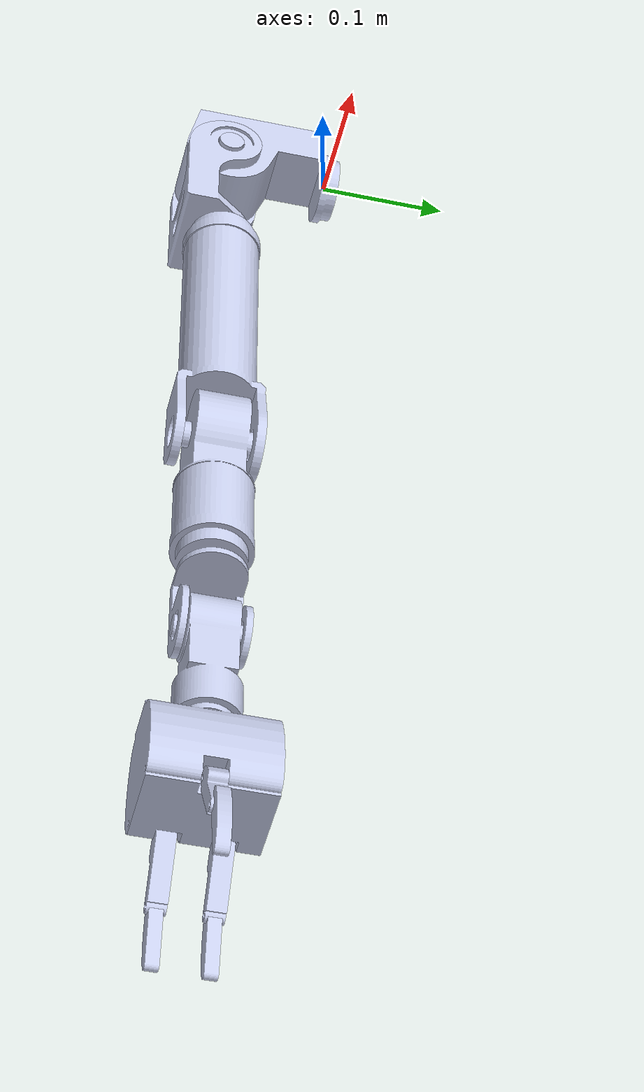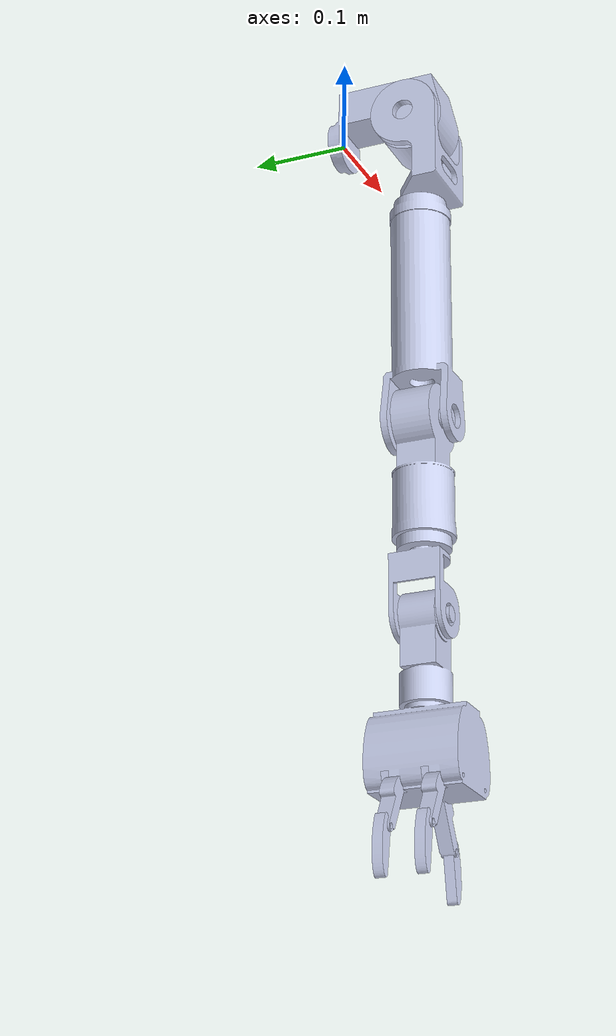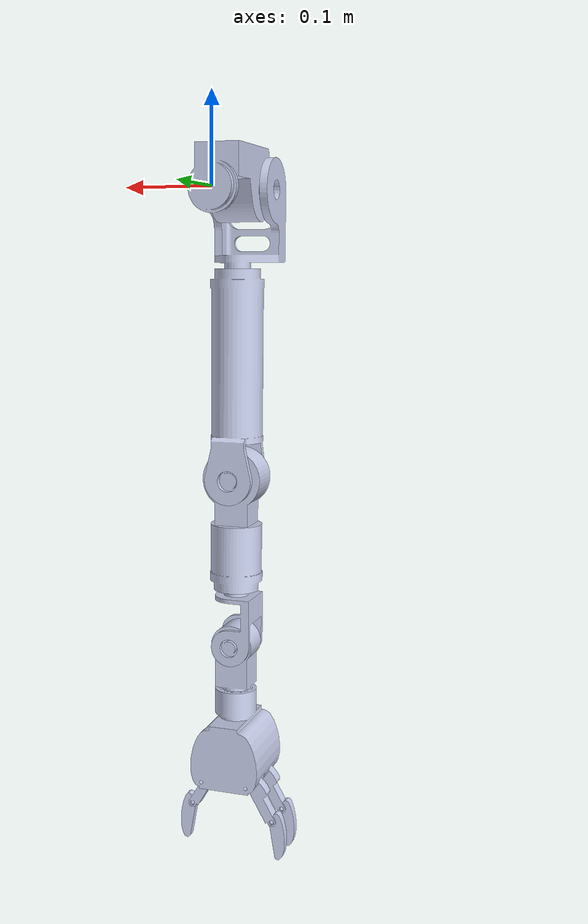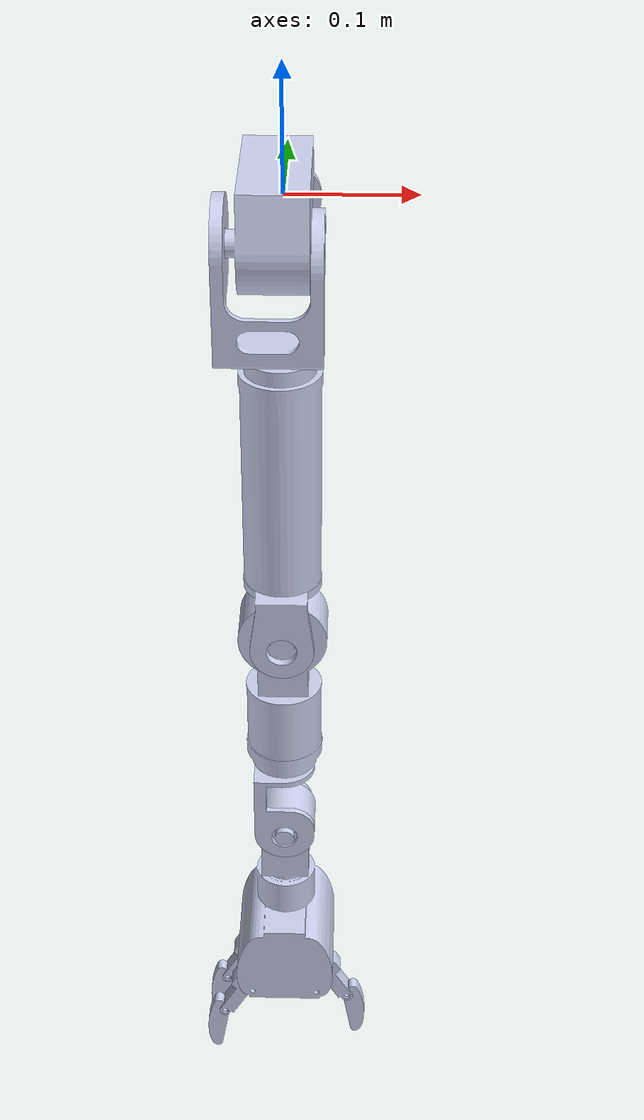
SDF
<?xml version='1.0'?>
<sdf version='1.6'>
  <model name='TEO_rightArm'>

    <link name='FrontalRightShoulder_link'>
      <pose>0 0 0 0 -0 0</pose>
      <inertial>
        <pose>-0.002267 -0.056164 0.008456 0 -0 0</pose>
        <mass>2</mass>
        <inertia>
          <ixx>0.004226791</ixx>
          <ixy>0.0000844</ixy>
          <ixz>-0.0000117</ixz>
          <iyy>0.002127281</iyy>
          <iyz>-0.000280493</iyz>
          <izz>0.004093161</izz>
        </inertia>
      </inertial>
      <visual name='FrontalRightShoulder_visual'>
        <geometry>
          <mesh>
            <uri>model://teo/meshes/visual/FrontalRightShoulder.dae</uri>
          </mesh>
        </geometry>
        <material>
          <ambient>0.792157 0.819608 0.933333 1</ambient>
          <diffuse>0.792157 0.819608 0.933333 1</diffuse>
          <specular>0.633726 0.655686 0.746667 1</specular>
          <emissive>0 0 0 1</emissive>
        </material>
      </visual>
      <collision name='FrontalRightShoulder_collision'>
        <geometry>
          <mesh>
            <uri>model://teo/meshes/collision/FrontalRightShoulder.stl</uri>
          </mesh>
        </geometry>
      </collision>
    </link>

    <joint name='FrontalRightShoulder' type='revolute'>
      <parent>TEO_trunk::FrontalWaist_link</parent>
      <child>TEO_rightArm::FrontalRightShoulder_link</child>
      <axis>
        <xyz>0 1 0</xyz>
        <limit>
          <lower>-1.71</lower>
          <upper>1.85</upper>
        </limit>
        <dynamics>
          <damping>0.001</damping>
          <friction>0.7</friction>
        </dynamics>
      </axis>
    </joint>

    <link name='SagittalRightShoulder_link'>
      <pose>0 -0.084 0 0 -0 0</pose>
      <inertial>
        <pose>-0.008472 -0.004826 -0.027321 0 -0 0</pose>
        <mass>1</mass>
        <inertia>
          <ixx>0.001610932</ixx>
          <ixy>-0.000069</ixy>
          <ixz>-0.000214886</ixz>
          <iyy>0.002187776</iyy>
          <iyz>-0.000069</iyz>
          <izz>0.001173533</izz>
        </inertia>
      </inertial>
      <visual name='SagittalRightShoulder_visual'>
        <geometry>
          <mesh>
            <uri>model://teo/meshes/visual/SagittalRightShoulder.dae</uri>
          </mesh>
        </geometry>
        <material>
          <ambient>0.792157 0.819608 0.933333 1</ambient>
          <diffuse>0.792157 0.819608 0.933333 1</diffuse>
          <specular>0.633726 0.655686 0.746667 1</specular>
          <emissive>0 0 0 1</emissive>
        </material>
      </visual>
      <collision name='SagittalRightShoulder_collision'>
        <geometry>
          <mesh>
            <uri>model://teo/meshes/collision/SagittalRightShoulder.stl</uri>
          </mesh>
        </geometry>
      </collision>
    </link>

    <joint name='SagittalRightShoulder' type='revolute'>
      <parent>TEO_rightArm::FrontalRightShoulder_link</parent>
      <child>TEO_rightArm::SagittalRightShoulder_link</child>
      <axis>
        <xyz>1 0 0</xyz>
        <limit>
          <lower>-1.32</lower>
          <upper>0.39</upper>
        </limit>
        <dynamics>
          <damping>0.001</damping>
          <friction>0.7</friction>
        </dynamics>
      </axis>
    </joint>

    <link name='AxialRightShoulder_link'>
      <pose>0 -0.084 -0.329 0 -0 0</pose>
      <inertial>
        <pose>0.000347 0.000245 0.107382 0 -0 0</pose>
        <mass>1</mass>
      </inertial>
      <visual name='AxialRightShoulder_visual'>
        <geometry>
          <mesh>
            <uri>model://teo/meshes/visual/AxialRightShoulder.dae</uri>
          </mesh>
        </geometry>
        <material>
          <ambient>0.792157 0.819608 0.933333 1</ambient>
          <diffuse>0.792157 0.819608 0.933333 1</diffuse>
          <specular>0.633726 0.655686 0.746667 1</specular>
          <emissive>0 0 0 1</emissive>
        </material>
      </visual>
      <collision name='AxialRightShoulder_collision'>
        <geometry>
          <mesh>
            <uri>model://teo/meshes/collision/AxialRightShoulder.stl</uri>
          </mesh>
        </geometry>
      </collision>
    </link>

    <joint name='AxialRightShoulder' type='revolute'>
      <parent>TEO_rightArm::SagittalRightShoulder_link</parent>
      <child>TEO_rightArm::AxialRightShoulder_link</child>
      <axis>
        <xyz>0 0 1</xyz>
        <limit>
          <lower>-1.4</lower>
          <upper>0.99</upper>
        </limit>
        <dynamics>
          <damping>0.001</damping>
          <friction>0.7</friction>
        </dynamics>
      </axis>
    </joint>

    <link name='FrontalRightElbow_link'>
      <pose>0 -0.084 -0.329 0 -0 0</pose>
      <inertial>
        <pose>0.000237 -0.00004 -0.04998 0 -0 0</pose>
        <mass>1</mass>
        <inertia>
          <ixx>0.002590029</ixx>
          <ixy>0</ixy>
          <ixz>0</ixz>
          <iyy>0.00262307</iyy>
          <iyz>0</iyz>
          <izz>0.000446024</izz>
        </inertia>
      </inertial>
      <visual name='FrontalRightElbow_visual'>
        <geometry>
          <mesh>
            <uri>model://teo/meshes/visual/FrontalRightElbow.dae</uri>
          </mesh>
        </geometry>
        <material>
          <ambient>0.792157 0.819608 0.933333 1</ambient>
          <diffuse>0.792157 0.819608 0.933333 1</diffuse>
          <specular>0.633726 0.655686 0.746667 1</specular>
          <emissive>0 0 0 1</emissive>
        </material>
      </visual>
      <collision name='FrontalRightElbow_collision'>
        <geometry>
          <mesh>
            <uri>model://teo/meshes/collision/FrontalRightElbow.stl</uri>
          </mesh>
        </geometry>
      </collision>
    </link>

    <joint name='FrontalRightElbow' type='revolute'>
      <parent>TEO_rightArm::AxialRightShoulder_link</parent>
      <child>TEO_rightArm::FrontalRightElbow_link</child>
      <axis>
        <xyz>0 1 0</xyz>
        <limit>
          <lower>-1.74</lower>
          <upper>1.72</upper>
        </limit>
        <dynamics>
          <damping>0.001</damping>
          <friction>0.7</friction>
        </dynamics>
      </axis>
    </joint>

    <link name='AxialRightWrist_link'>
      <pose>0 -0.084 -0.531 0 -0 0</pose>
      <inertial>
        <pose>-0.001151 0.000603 0.02464 0 -0 0</pose>
        <mass>0.63149</mass>
      </inertial>
      <visual name='AxialRightWrist_visual'>
        <geometry>
          <mesh>
            <uri>model://teo/meshes/visual/AxialRightWrist.dae</uri>
          </mesh>
        </geometry>
        <material>
          <ambient>0.792157 0.819608 0.933333 1</ambient>
          <diffuse>0.792157 0.819608 0.933333 1</diffuse>
          <specular>0.633726 0.655686 0.746667 1</specular>
          <emissive>0 0 0 1</emissive>
        </material>
      </visual>
      <collision name='AxialRightWrist_collision'>
        <geometry>
          <mesh>
            <uri>model://teo/meshes/collision/AxialRightWrist.stl</uri>
          </mesh>
        </geometry>
      </collision>
    </link>

    <joint name='AxialRightWrist' type='revolute'>
      <parent>TEO_rightArm::FrontalRightElbow_link</parent>
      <child>TEO_rightArm::AxialRightWrist_link</child>
      <axis>
        <xyz>0 0 1</xyz>
        <limit>
          <lower>-1.4</lower>
          <upper>1.74</upper>
        </limit>
        <dynamics>
          <damping>0.001</damping>
          <friction>0.7</friction>
        </dynamics>
      </axis>
    </joint>

    <include>
      <pose>0 -0.084 -0.531 0 -0 0</pose>
      <uri>model://teo_lacqueyFetch/rightLacqueyFetch</uri>
    </include>

    <joint name='FrontalRightWrist' type='revolute'>
      <parent>TEO_rightArm::AxialRightWrist_link</parent>
      <child>TEO_rightLacqueyFetch::FrontalRightWrist_link</child>
      <axis>
        <xyz>0 1 0</xyz>
        <limit>
          <lower>-2.01</lower>
          <upper>0.78</upper>
        </limit>
        <dynamics>
          <damping>0.001</damping>
          <friction>0.7</friction>
        </dynamics>
      </axis>
    </joint>

    <plugin name='controlboard_rightArm' filename='libgazebo_yarp_controlboard.so'>
      <yarpConfigurationFile>model://teo/conf/gazebo_teo_rightArm.ini</yarpConfigurationFile>
    </plugin>

    <plugin name='robotinterface_rightArm' filename='libgazebo_yarp_robotinterface.so'>
      <yarpRobotInterfaceConfigurationFile>model://teo/conf/teo_rightArm_nws.xml</yarpRobotInterfaceConfigurationFile>
    </plugin>

  </model>
</sdf>

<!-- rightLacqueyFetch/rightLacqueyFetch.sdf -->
<sdf version='1.6'>
  <model name='TEO_rightLacqueyFetch'>
    <!-- Base: FrontalWrist (muñeca + palma) -->
    <link name='FrontalRightWrist_link'>
      <pose>0 0 0 0 -0 0</pose>
      <inertial>
        <pose>-0.000050 -0.000055 -0.107329 0 -0 0</pose>
        <mass>1.078</mass>
        <inertia>
          <ixx>0.0033558744</ixx>
          <ixy>-0.000000324</ixy>
          <ixz>0.0000088739</ixz>
          <iyy>0.0031520281</iyy>
          <iyz>0.0000036082</iyz>
          <izz>0.0010088020</izz>
        </inertia>
      </inertial>
      <visual name='FrontalRightWrist_visual'>
        <geometry>
          <mesh>
            <scale>0.001 0.001 0.001</scale>
            <uri>model://teo/meshes/visual/lacqueyFetch/FrontalWrist.dae</uri>
          </mesh>
        </geometry>
        <material>
          <ambient>0.792157 0.819608 0.933333 1</ambient>
          <diffuse>0.792157 0.819608 0.933333 1</diffuse>
          <specular>0.633726 0.655686 0.746667 1</specular>
          <emissive>0 0 0 1</emissive>
        </material>
      </visual>
      <collision name='FrontalRightWrist_collision'>
        <pose>0.0 0.0 0.0 1.57079632679 0.0 0.0</pose>
        <geometry>
          <mesh>
            <scale>0.001 0.001 0.001</scale>
            <uri>model://teo/meshes/collision/lacqueyFetch/FrontalWrist.stl</uri>
          </mesh>
        </geometry>
         <max_contacts>10</max_contacts>
        <surface>
          <contact>
            <ode>
              <kp>1000000</kp>
              <kd>100</kd>
              <max_vel>0.001</max_vel>
              <min_depth>0.001</min_depth>
            </ode>
          </contact>
          <friction>
            <ode>
              <mu>1</mu>
              <mu2>1</mu2>
              <slip1>0</slip1>
              <slip2>0</slip2>
            </ode>
          </friction>
        </surface>
      </collision>
    </link>

    <!-- Dedo pulgar (thumb): falange proximal (00) -->
    <link name='RightThumbProximal_link'>
      <pose>0.027472302 0 -0.164588951 0 -0 0</pose>
      <inertial>
        <pose>0.012547 0.000009 -0.020977 0 -0 0</pose>
        <mass>0.018092</mass>
        <inertia>
          <ixx>0.0000042540336</ixx>
          <ixy>-0.000000000003</ixy>
          <ixz>0.0000016664918</ixz>
          <iyy>0.0000051152263</iyy>
          <iyz>-0.000000000012</iyz>
          <izz>0.0000014691909</izz>
        </inertia>
      </inertial>
      <visual name='RightThumbProximalRight_visual'>
        <geometry>
          <mesh>
            <scale>0.001 0.001 0.001</scale>
            <uri>model://teo/meshes/visual/lacqueyFetch/PhalangeProximal.dae</uri>
          </mesh>
        </geometry>
        <material>
          <ambient>0.792157 0.819608 0.933333 1</ambient>
          <diffuse>0.792157 0.819608 0.933333 1</diffuse>
          <specular>0.633726 0.655686 0.746667 1</specular>
          <emissive>0 0 0 1</emissive>
        </material>
      </visual>
      <collision name='RightThumbProximal_collision'>
        <pose>0.0 0.0 0.0 1.57079632679 0.0 -3.14159265359</pose>
        <geometry>
          <mesh>
            <scale>0.001 0.001 0.001</scale>
            <uri>model://teo/meshes/collision/lacqueyFetch/PhalangeProximal.stl</uri>
          </mesh>
        </geometry>
        <max_contacts>2</max_contacts>
        <surface>
          <contact>
            <ode>
              <kp>1000000</kp>
              <kd>100</kd>
              <max_vel>0.001</max_vel>
              <min_depth>0.001</min_depth>
            </ode>
          </contact>
          <friction>
            <ode>
              <mu>1</mu>
              <mu2>1</mu2>
              <slip1>0</slip1>
              <slip2>0</slip2>
            </ode>
          </friction>
        </surface>
      </collision>
    </link>

    <joint name='RightThumbProximal' type='revolute'>
      <parent>TEO_rightLacqueyFetch::FrontalRightWrist_link</parent>
      <child>TEO_rightLacqueyFetch::RightThumbProximal_link</child>
      <axis>
        <xyz>0 -1 0</xyz>
        <limit>
          <lower>-0.523599</lower>
          <upper>0.174533</upper>
        </limit>
        <dynamics>
          <damping>0.001</damping>
          <friction>0.7</friction>
        </dynamics>
      </axis>
    </joint>

    <!-- Dedo pulgar (thumb): falange distal (00) -->
    <link name='RightThumbDistal_link'>
      <pose>0.054472302 0 -0.211588951 0 -0 0</pose>
      <inertial>
        <pose>0.006817 0 -0.017343 0 -0 0</pose>
        <mass>0.01234</mass>
        <inertia>
          <ixx>0.000002852</ixx>
          <ixy>0.000000000</ixy>
          <ixz>0.000000239</ixz>
          <iyy>0.000003003</iyy>
          <iyz>0.00000000</iyz>
          <izz>0.000000357</izz>
        </inertia>
      </inertial>
      <visual name='RightThumbDistal_visual'>
        <geometry>
          <mesh>
            <scale>0.001 0.001 0.001</scale>
            <uri>model://teo/meshes/visual/lacqueyFetch/PhalangeDistal.dae</uri>
          </mesh>
        </geometry>
        <material>
          <ambient>0.792157 0.819608 0.933333 1</ambient>
          <diffuse>0.792157 0.819608 0.933333 1</diffuse>
          <specular>0.633726 0.655686 0.746667 1</specular>
          <emissive>0 0 0 1</emissive>
        </material>
      </visual>
      <collision name='RightThumbDistal_collision'>
        <pose>0.0 0.0 0.0 1.57079632679 0.0 -3.14159265359</pose>
        <geometry>
          <mesh>
            <scale>0.001 0.001 0.001</scale>
            <uri>model://teo/meshes/collision/lacqueyFetch/PhalangeDistal.stl</uri>
          </mesh>
        </geometry>
        <max_contacts>2</max_contacts>
        <surface>
          <contact>
            <ode>
              <kp>1000000</kp>
              <kd>100</kd>
              <max_vel>0.001</max_vel>
              <min_depth>0.001</min_depth>
            </ode>
          </contact>
          <friction>
            <ode>
              <mu>1</mu>
              <mu2>1</mu2>
              <slip1>0</slip1>
              <slip2>0</slip2>
            </ode>
          </friction>
        </surface>
      </collision>
    </link>
    <joint name='RightThumbDistal' type='revolute'>
      <parent>TEO_rightLacqueyFetch::RightThumbProximal_link</parent>
      <child>TEO_rightLacqueyFetch::RightThumbDistal_link</child>
      <axis>
        <xyz>0 -1 0</xyz>
        <limit>
          <lower>-0.872665</lower>
          <upper>0.174533</upper>
        </limit>
        <dynamics>
          <damping>0.001</damping>
          <friction>0.7</friction>
        </dynamics>
      </axis>
    </joint>

    <!-- Dedo indice: falange proximal (01) -->
    <link name='ExternalRightFingerProximal_link'>
      <pose>-0.02852741 -0.02010339 -0.164409358 0 0 -3.14159265359</pose>
      <inertial>
        <pose>0.012547 0.000009 -0.020977 0 -0 0</pose>
        <mass>0.018092</mass>
        <inertia>
          <ixx>0.0000042540336</ixx>
          <ixy>-0.000000000003</ixy>
          <ixz>0.0000016664918</ixz>
          <iyy>0.0000051152263</iyy>
          <iyz>-0.000000000012</iyz>
          <izz>0.0000014691909</izz>
        </inertia>
      </inertial>
      <visual name='ExternalRightFingerProximal_visual'>
        <geometry>
          <mesh>
            <scale>0.001 0.001 0.001</scale>
            <uri>model://teo/meshes/visual/lacqueyFetch/PhalangeProximal.dae</uri>
          </mesh>
        </geometry>
        <material>
          <ambient>0.792157 0.819608 0.933333 1</ambient>
          <diffuse>0.792157 0.819608 0.933333 1</diffuse>
          <specular>0.633726 0.655686 0.746667 1</specular>
          <emissive>0 0 0 1</emissive>
        </material>
      </visual>
      <collision name='ExternalRightFingerProximal_collision'>
        <pose>0.0 0.0 0.0 1.57079632679 0.0 -3.14159265359</pose>
        <geometry>
          <mesh>
            <scale>0.001 0.001 0.001</scale>
            <uri>model://teo/meshes/collision/lacqueyFetch/PhalangeProximal.stl</uri>
          </mesh>
        </geometry>
        <max_contacts>2</max_contacts>
        <surface>
          <contact>
            <ode>
              <kp>1000000</kp>
              <kd>100</kd>
              <max_vel>0.001</max_vel>
              <min_depth>0.001</min_depth>
            </ode>
          </contact>
          <friction>
            <ode>
              <mu>1</mu>
              <mu2>1</mu2>
              <slip1>0</slip1>
              <slip2>0</slip2>
            </ode>
          </friction>
        </surface>
      </collision>
    </link>

    <joint name='ExternalRightFingerProximal' type='revolute'>
      <parent>TEO_rightLacqueyFetch::FrontalRightWrist_link</parent>
      <child>TEO_rightLacqueyFetch::ExternalRightFingerProximal_link</child>
      <axis>
        <xyz>0 -1 0</xyz>
        <limit>
          <lower>-0.523599</lower>
          <upper>0.174533</upper>
        </limit>
        <dynamics>
          <damping>0.001</damping>
          <friction>0.7</friction>
        </dynamics>
      </axis>
    </joint>

    <!-- Dedo indice: falange distal (01) -->
    <link name='ExternalRightFingerDistal_link'>
      <pose>-0.05552741 -0.02010339 -0.211409358 0 -0 -3.14159265359</pose>
      <inertial>
        <pose>0.006817 0 -0.017343 0 -0 0</pose>
        <mass>0.01234</mass>
        <inertia>
          <ixx>0.000002852</ixx>
          <ixy>0.000000000</ixy>
          <ixz>0.000000239</ixz>
          <iyy>0.000003003</iyy>
          <iyz>0.00000000</iyz>
          <izz>0.000000357</izz>
        </inertia>
      </inertial>
      <visual name='ExternalRightFingerDistal_visual'>
        <geometry>
          <mesh>
            <scale>0.001 0.001 0.001</scale>
            <uri>model://teo/meshes/visual/lacqueyFetch/PhalangeDistal.dae</uri>
          </mesh>
        </geometry>
        <material>
          <ambient>0.792157 0.819608 0.933333 1</ambient>
          <diffuse>0.792157 0.819608 0.933333 1</diffuse>
          <specular>0.633726 0.655686 0.746667 1</specular>
          <emissive>0 0 0 1</emissive>
        </material>
      </visual>
      <collision name='ExternalRightFingerDistal_collision'>
        <pose>0.0 0.0 0.0 1.57079632679 0.0 -3.14159265359</pose>
        <geometry>
          <mesh>
            <scale>0.001 0.001 0.001</scale>
            <uri>model://teo/meshes/collision/lacqueyFetch/PhalangeDistal.stl</uri>
          </mesh>
        </geometry>
        <max_contacts>2</max_contacts>
        <surface>
          <contact>
            <ode>
              <kp>1000000</kp>
              <kd>100</kd>
              <max_vel>0.001</max_vel>
              <min_depth>0.001</min_depth>
            </ode>
          </contact>
          <friction>
            <ode>
              <mu>1</mu>
              <mu2>1</mu2>
              <slip1>0</slip1>
              <slip2>0</slip2>
            </ode>
          </friction>
        </surface>
      </collision>
    </link>
    <joint name='ExternalRightFingerDistal' type='revolute'>
      <parent>TEO_rightLacqueyFetch::ExternalRightFingerProximal_link</parent>
      <child>TEO_rightLacqueyFetch::ExternalRightFingerDistal_link</child>
      <axis>
        <xyz>0 -1 0</xyz>
        <limit>
          <lower>-0.872665</lower>
          <upper>0.174533</upper>
        </limit>
        <dynamics>
          <damping>0.001</damping>
          <friction>0.7</friction>
        </dynamics>
      </axis>
    </joint>

    <!-- Dedo medio: falange proximal (02) -->
    <link name='InternalRightFingerProximal_link'>
      <pose>-0.02852741 0.02010339 -0.164409358 0 0 -3.14159265359</pose>
      <inertial>
        <pose>0.012547 0.000009 -0.020977 0 -0 0</pose>
        <mass>0.018092</mass>
        <inertia>
          <ixx>0.0000042540336</ixx>
          <ixy>-0.000000000003</ixy>
          <ixz>0.0000016664918</ixz>
          <iyy>0.0000051152263</iyy>
          <iyz>-0.000000000012</iyz>
          <izz>0.0000014691909</izz>
        </inertia>
      </inertial>
      <visual name='InternalRightFingerProximal_visual'>
        <geometry>
          <mesh>
            <scale>0.001 0.001 0.001</scale>
            <uri>model://teo/meshes/visual/lacqueyFetch/PhalangeProximal.dae</uri>
          </mesh>
        </geometry>
        <material>
          <ambient>0.792157 0.819608 0.933333 1</ambient>
          <diffuse>0.792157 0.819608 0.933333 1</diffuse>
          <specular>0.633726 0.655686 0.746667 1</specular>
          <emissive>0 0 0 1</emissive>
        </material>
      </visual>
      <collision name='InternalRightFingerProximal_collision'>
        <pose>0.0 0.0 0.0 1.57079632679 0.0 -3.14159265359</pose>
        <geometry>
          <mesh>
            <scale>0.001 0.001 0.001</scale>
            <uri>model://teo/meshes/collision/lacqueyFetch/PhalangeProximal.stl</uri>
          </mesh>
        </geometry>
        <max_contacts>2</max_contacts>
        <surface>
          <contact>
            <ode>
              <kp>1000000</kp>
              <kd>100</kd>
              <max_vel>0.001</max_vel>
              <min_depth>0.001</min_depth>
            </ode>
          </contact>
          <friction>
            <ode>
              <mu>1</mu>
              <mu2>1</mu2>
              <slip1>0</slip1>
              <slip2>0</slip2>
            </ode>
          </friction>
        </surface>
      </collision>
    </link>

    <joint name='InternalRightFingerProximal' type='revolute'>
      <parent>TEO_rightLacqueyFetch::FrontalRightWrist_link</parent>
      <child>TEO_rightLacqueyFetch::InternalRightFingerProximal_link</child>
      <axis>
        <xyz>0 -1 0</xyz>
        <limit>
          <lower>-0.523599</lower>
          <upper>0.174533</upper>
        </limit>
        <dynamics>
          <damping>0.001</damping>
          <friction>0.7</friction>
        </dynamics>
      </axis>
    </joint>

    <!-- Dedo medio: falange distal (01) -->
    <link name='InternalRightFingerDistal_link'>
      <pose>-0.05552741 0.02010339 -0.211409358 0 -0 -3.14159265359</pose>
      <inertial>
        <pose>0.006817 0 -0.017343 0 -0 0</pose>
        <mass>0.01234</mass>
        <inertia>
          <ixx>0.000002852</ixx>
          <ixy>0.000000000</ixy>
          <ixz>0.000000239</ixz>
          <iyy>0.000003003</iyy>
          <iyz>0.00000000</iyz>
          <izz>0.000000357</izz>
        </inertia>
      </inertial>
      <visual name='InternalRightFingerDistal_visual'>
        <geometry>
          <mesh>
            <scale>0.001 0.001 0.001</scale>
            <uri>model://teo/meshes/visual/lacqueyFetch/PhalangeDistal.dae</uri>
          </mesh>
        </geometry>
        <material>
          <ambient>0.792157 0.819608 0.933333 1</ambient>
          <diffuse>0.792157 0.819608 0.933333 1</diffuse>
          <specular>0.633726 0.655686 0.746667 1</specular>
          <emissive>0 0 0 1</emissive>
        </material>
      </visual>
      <collision name='InternalRightFingerDistal_collision'>
        <pose>0.0 0.0 0.0 1.57079632679 0.0 -3.14159265359</pose>
        <geometry>
          <mesh>
            <scale>0.001 0.001 0.001</scale>
            <uri>model://teo/meshes/collision/lacqueyFetch/PhalangeDistal.stl</uri>
          </mesh>
        </geometry>
        <max_contacts>2</max_contacts>
        <surface>
          <contact>
            <ode>
              <kp>1000000</kp>
              <kd>100</kd>
              <max_vel>0.001</max_vel>
              <min_depth>0.001</min_depth>
            </ode>
          </contact>
          <friction>
            <ode>
              <mu>1</mu>
              <mu2>1</mu2>
              <slip1>0</slip1>
              <slip2>0</slip2>
            </ode>
          </friction>
        </surface>
      </collision>
    </link>
    <joint name='InternalRightFingerDistal' type='revolute'>
      <parent>TEO_rightLacqueyFetch::InternalRightFingerProximal_link</parent>
      <child>TEO_rightLacqueyFetch::InternalRightFingerDistal_link</child>
      <axis>
        <xyz>0 -1 0</xyz>
        <limit>
          <lower>-0.872665</lower>
          <upper>0.174533</upper>
        </limit>
        <dynamics>
          <damping>0.001</damping>
          <friction>0.7</friction>
        </dynamics>
      </axis>
    </joint>

    <plugin name='controlboard_rightLacqueyFetch_thumb' filename='libgazebo_yarp_controlboard.so'>
      <yarpConfigurationFile>model://teo/conf/gazebo_teo_rightLacqueyFetch_thumb.ini</yarpConfigurationFile>
    </plugin>

    <plugin name='robotinterface_rightLacqueyFetch_thumb' filename='libgazebo_yarp_robotinterface.so'>
      <yarpRobotInterfaceConfigurationFile>model://teo/conf/teo_rightLacqueyFetch_thumb_nws.xml</yarpRobotInterfaceConfigurationFile>
    </plugin>

    <plugin name='controlboard_rightLacqueyFetch_externalFinger' filename='libgazebo_yarp_controlboard.so'>
      <yarpConfigurationFile>model://teo/conf/gazebo_teo_rightLacqueyFetch_externalFinger.ini</yarpConfigurationFile>
    </plugin>

    <plugin name='robotinterface_rightLacqueyFetch_externalFinger' filename='libgazebo_yarp_robotinterface.so'>
      <yarpRobotInterfaceConfigurationFile>model://teo/conf/teo_rightLacqueyFetch_externalFinger_nws.xml</yarpRobotInterfaceConfigurationFile>
    </plugin>

    <plugin name='controlboard_rightLacqueyFetch_internalFinger' filename='libgazebo_yarp_controlboard.so'>
      <yarpConfigurationFile>model://teo/conf/gazebo_teo_rightLacqueyFetch_internalFinger.ini</yarpConfigurationFile>
    </plugin>

    <plugin name='robotinterface_rightLacqueyFetch_internalFinger' filename='libgazebo_yarp_robotinterface.so'>
      <yarpRobotInterfaceConfigurationFile>model://teo/conf/teo_rightLacqueyFetch_internalFinger_nws.xml</yarpRobotInterfaceConfigurationFile>
    </plugin>

  </model>
</sdf>
